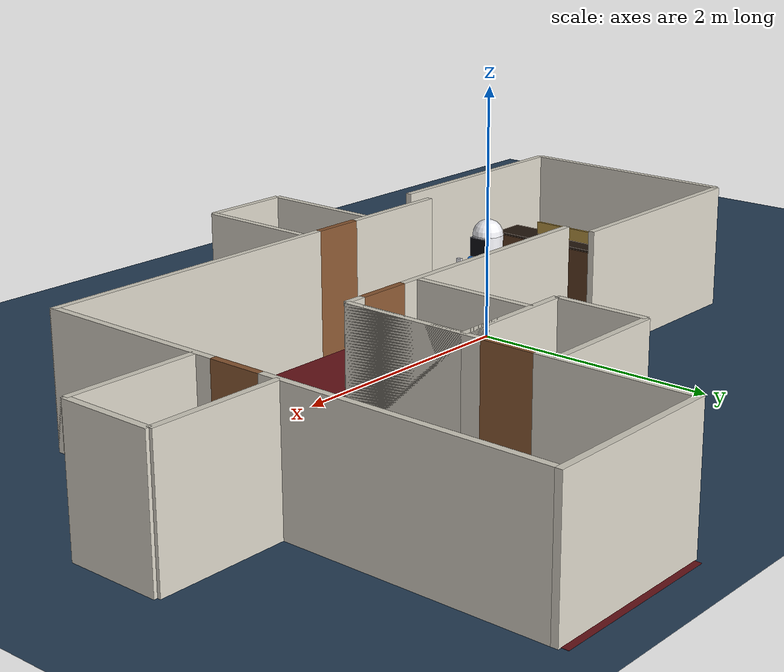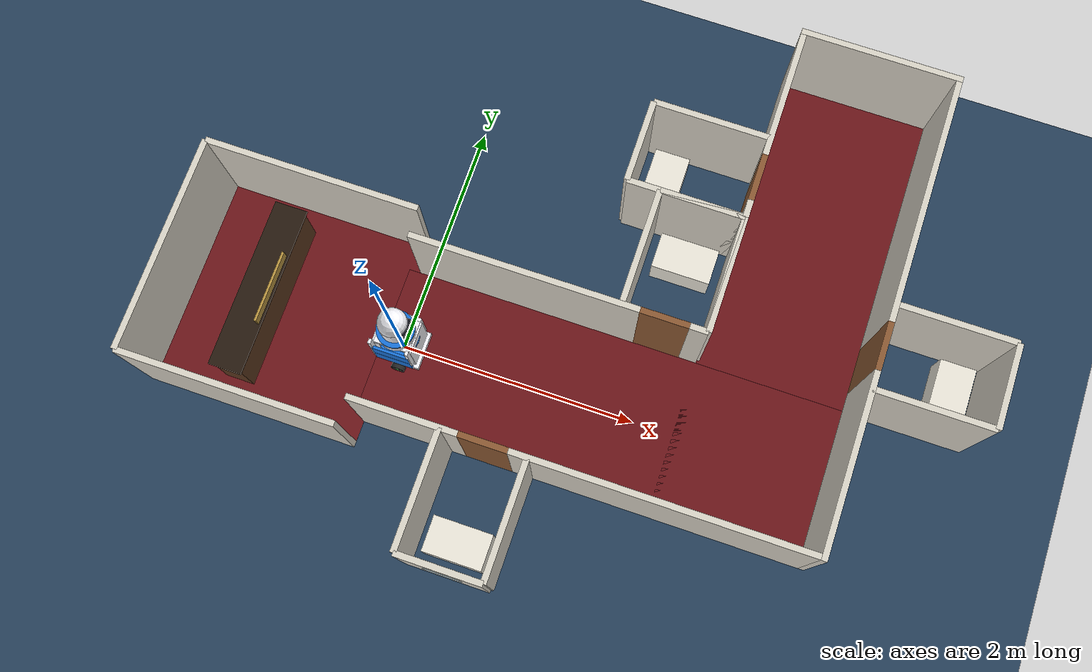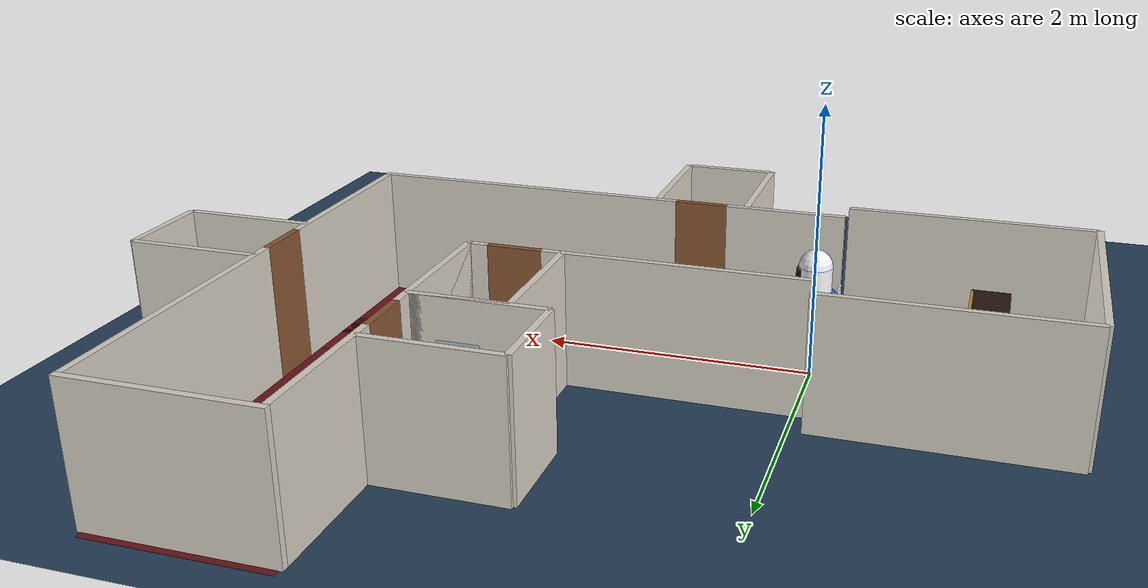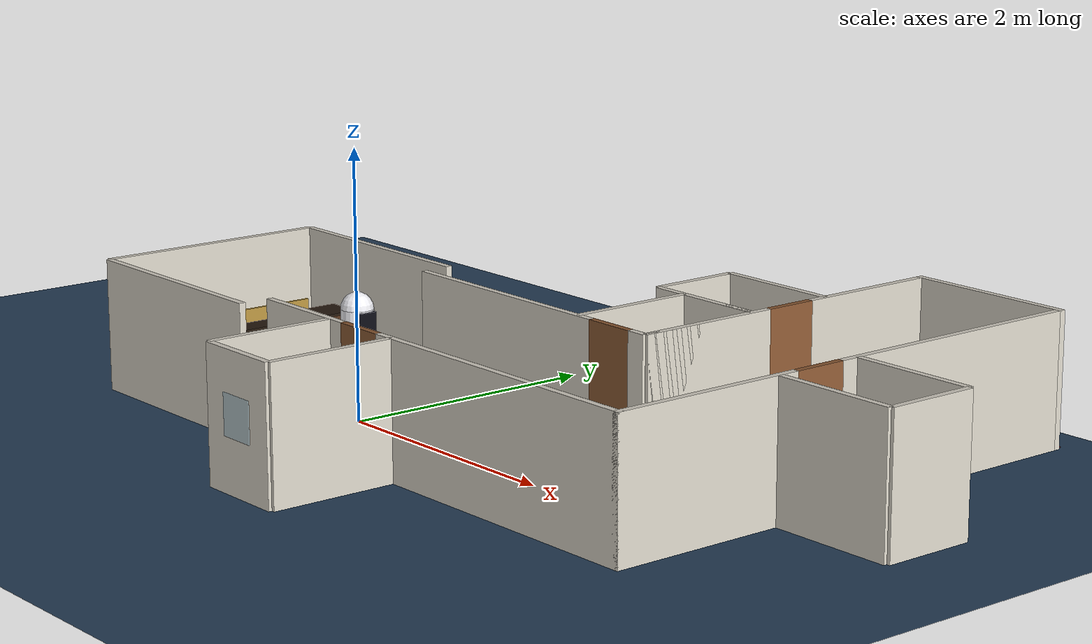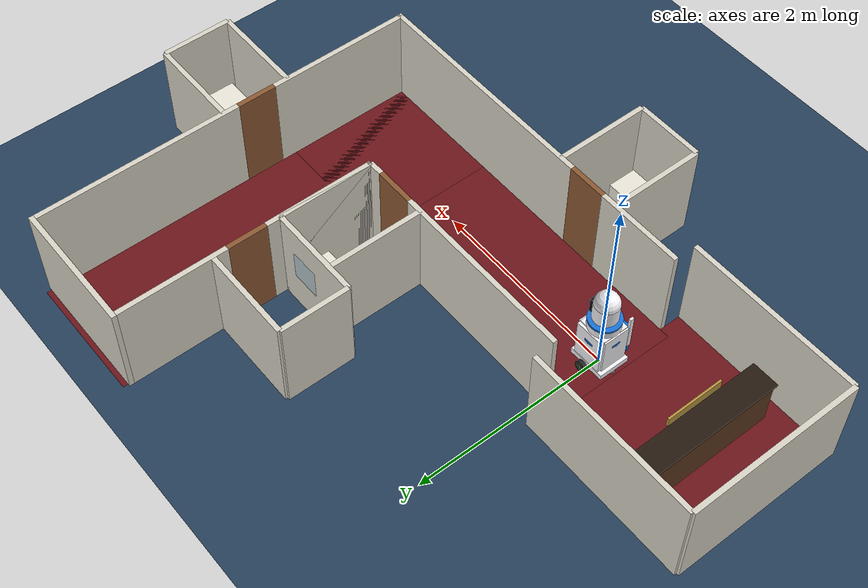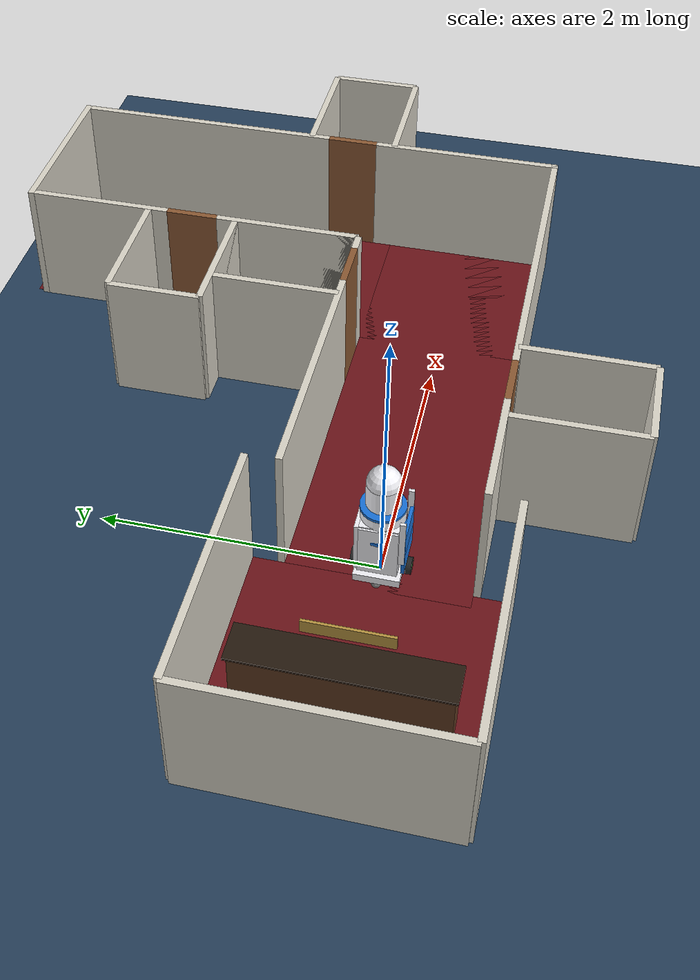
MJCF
<mujoco model="concierge_hotel_corridor">
  <include file="delivery_bot_v2.xml"/>

  <asset>
    <material name="wall_paint" rgba="0.85 0.83 0.78 1"/>
    <material name="door_panel" rgba="0.55 0.35 0.2 1"/>
    <material name="carpet_hotel" rgba="0.42 0.08 0.1 1"/>
    <material name="desk_wood" rgba="0.36 0.22 0.12 1"/>
    <material name="desk_top" rgba="0.15 0.1 0.06 1"/>
    <material name="bed_linen" rgba="0.92 0.9 0.85 1"/>
    <material name="window_glass" rgba="0.65 0.78 0.85 0.55"/>
    <material name="sign_brass" rgba="0.72 0.58 0.25 1"/>
  </asset>

  <worldbody>
    <camera name="top" mode="fixed" pos="1.5 1.5 9" xyaxes="1 0 0  0 1 0" fovy="30"/>

    <camera name="lobby_side_view" mode="targetbodycom" target="robot" pos="-1.65 -0.75 0.7"/>

    <camera name="guest_view" mode="targetbodycom" target="robot" pos="-0.35 0.85 0.55"/>

    <light name="lobby_light" pos="-1.5 0 0.95" dir="0 0 -1" diffuse="0.9 0.82 0.68" ambient="0.3 0.27 0.22" castshadow="false"/>
    <light name="hall_light_near" pos="1.5 0 0.95" dir="0 0 -1" diffuse="0.85 0.78 0.63" ambient="0.25 0.22 0.19" castshadow="false"/>
    <light name="hall_light_far" pos="3.0 1.8 0.95" dir="0 0 -1" diffuse="0.85 0.78 0.63" ambient="0.25 0.22 0.19" castshadow="false"/>

    <!-- Staff POV from behind the front desk (desk at x=-1.2, top at z~0.5),
         used by engine.py's loading scene: looks over the counter at the
         robot's cargo side while it is loaded. -->
    <camera name="desk_staff" mode="targetbodycom" target="robot" pos="-1.6 0.3 1.3" fovy="60"/>
    <camera name="room_0803" mode="targetbodycom" target="robot" pos="1.15 -1.5 0.9" fovy="60"/>
    <camera name="room_0804" mode="targetbodycom" target="robot" pos="2.15 1.5 0.9" fovy="60"/>
    <camera name="room_1204" mode="targetbodycom" target="robot" pos="4.45 1.15 0.9" fovy="60"/>
    <camera name="room_1205" mode="targetbodycom" target="robot" pos="1.55 2.15 0.9" fovy="60"/>
    <light name="room_light_0803" pos="1.0 -1.2 0.95" dir="0 0 -1" diffuse="0.8 0.74 0.6" castshadow="false"/>
    <light name="room_light_0804" pos="2.0 1.2 0.95" dir="0 0 -1" diffuse="0.8 0.74 0.6" castshadow="false"/>
    <light name="room_light_1204" pos="4.15 1.0 0.95" dir="0 0 -1" diffuse="0.8 0.74 0.6" castshadow="false"/>
    <light name="room_light_1205" pos="1.85 2.0 0.95" dir="0 0 -1" diffuse="0.8 0.74 0.6" castshadow="false"/>

    <geom name="carpet_lobby" type="box" pos="-1.0 0 0.001" size="0.9 0.9 0.001" material="carpet_hotel" contype="0" conaffinity="0"/>
    <geom name="carpet_near" type="box" pos="1.725 0 0.001" size="1.925 0.65 0.001" material="carpet_hotel" contype="0" conaffinity="0"/>
    <geom name="carpet_far" type="box" pos="3.0 1.375 0.001" size="0.65 2.025 0.001" material="carpet_hotel" contype="0" conaffinity="0"/>

    <body name="front_desk" pos="-1.2 0 0">
      <geom name="desk_body" type="box" pos="0 0 0.25" size="0.12 0.7 0.25" material="desk_wood" contype="0" conaffinity="0"/>
      <geom name="desk_top" type="box" pos="0 0 0.505" size="0.14 0.72 0.01" material="desk_top" contype="0" conaffinity="0"/>
      <geom name="desk_sign" type="box" pos="0.13 0 0.62" size="0.01 0.3 0.05" material="sign_brass" contype="0" conaffinity="0"/>
    </body>

    <geom name="lobby_back" type="box" pos="-1.9 0 0.5" size="0.025 0.9 0.5" material="wall_paint" contype="0" conaffinity="0"/>
    <geom name="lobby_side_s" type="box" pos="-1.0 -0.9 0.5" size="0.9 0.025 0.5" material="wall_paint" contype="0" conaffinity="0"/>
    <geom name="lobby_side_n" type="box" pos="-1.0 0.9 0.5" size="0.9 0.025 0.5" material="wall_paint" contype="0" conaffinity="0"/>

    <!-- ============ Near arm (desk -> junction), centerline y=0 ============ -->

    <!-- South wall (y=-0.65 inner face), broken by room 0803's door gap
         (x: 0.8 to 1.2) -->
    <geom name="wall_s_near_a" type="box" pos="0.35 -0.675 0.5" size="0.45 0.025 0.5" material="wall_paint"/>
    <!-- runs to the far arm's outer face (x=3.675) so the L's outer corner is
         closed by the walls themselves; see the note at the end of the file -->
    <geom name="wall_s_near_b" type="box" pos="2.4375 -0.675 0.5" size="1.2375 0.025 0.5" material="wall_paint"/>
    <!-- hinged so it can swing into the room on arrival (engine.py ARRIVED
         sequence); angle is set kinematically by concierge_sim, never
         collides (the robot stays in the corridor) -->
    <body name="door_0803" pos="0.8 -0.675 0">
      <joint name="door_hinge_0803" type="hinge" axis="0 0 -1" range="0 100" limited="true" damping="5"/>
      <geom name="0803" type="box" pos="0.2 0 0.5" size="0.2 0.025 0.5" material="door_panel" contype="0" conaffinity="0"/>
    </body>

    <geom name="room0803_back" type="box" pos="1.0 -1.65 0.5" size="0.35 0.025 0.5" material="wall_paint" contype="0" conaffinity="0"/>
    <geom name="room0803_left" type="box" pos="0.65 -1.1625 0.5" size="0.025 0.4875 0.5" material="wall_paint" contype="0" conaffinity="0"/>
    <geom name="room0803_right" type="box" pos="1.35 -1.1625 0.5" size="0.025 0.4875 0.5" material="wall_paint" contype="0" conaffinity="0"/>
    <geom name="room0803_bed" type="box" pos="1.0 -1.4 0.15" size="0.25 0.15 0.15" material="bed_linen" contype="0" conaffinity="0"/>
    <geom name="room0803_window" type="box" pos="1.0 -1.675 0.55" size="0.15 0.005 0.15" material="window_glass" contype="0" conaffinity="0"/>

    <!-- North wall (y=+0.65 inner face), stops before the junction (must
         leave room for the far arm's own widened corridor to pass
         through), broken by 0804's gap -->
    <geom name="wall_n_near_a" type="box" pos="0.85 0.675 0.5" size="0.95 0.025 0.5" material="wall_paint"/>
    <geom name="wall_n_near_b" type="box" pos="2.275 0.675 0.5" size="0.075 0.025 0.5" material="wall_paint"/>
    <!-- hinged so it can swing into the room on arrival (engine.py ARRIVED
         sequence); angle is set kinematically by concierge_sim, never
         collides (the robot stays in the corridor) -->
    <body name="door_0804" pos="1.8 0.675 0">
      <joint name="door_hinge_0804" type="hinge" axis="0 0 1" range="0 100" limited="true" damping="5"/>
      <geom name="0804" type="box" pos="0.2 0 0.5" size="0.2 0.025 0.5" material="door_panel" contype="0" conaffinity="0"/>
    </body>

    <!-- Room 0804 interior -->
    <geom name="room0804_back" type="box" pos="2.0 1.65 0.5" size="0.35 0.025 0.5" material="wall_paint" contype="0" conaffinity="0"/>
    <geom name="room0804_left" type="box" pos="1.65 1.1625 0.5" size="0.025 0.4875 0.5" material="wall_paint" contype="0" conaffinity="0"/>
    <geom name="room0804_right" type="box" pos="2.35 1.1625 0.5" size="0.025 0.4875 0.5" material="wall_paint" contype="0" conaffinity="0"/>
    <geom name="room0804_bed" type="box" pos="2.0 1.4 0.15" size="0.25 0.15 0.15" material="bed_linen" contype="0" conaffinity="0"/>
    <geom name="room0804_window" type="box" pos="2.0 1.675 0.55" size="0.15 0.005 0.15" material="window_glass" contype="0" conaffinity="0"/>

    <!-- ============ Far arm (junction -> dead end), centerline x=3.0 ============ -->

    <!-- East wall (x=+3.65 inner face), broken by room 1204's door gap -->
    <geom name="wall_e_far_a" type="box" pos="3.65 0.05 0.5" size="0.025 0.75 0.5" material="wall_paint"/>
    <geom name="wall_e_far_b" type="box" pos="3.65 2.25 0.5" size="0.025 1.05 0.5" material="wall_paint"/>
    <!-- hinged so it can swing into the room on arrival (engine.py ARRIVED
         sequence); angle is set kinematically by concierge_sim, never
         collides (the robot stays in the corridor) -->
    <body name="door_1204" pos="3.65 0.8 0">
      <joint name="door_hinge_1204" type="hinge" axis="0 0 -1" range="0 100" limited="true" damping="5"/>
      <geom name="1204" type="box" pos="0 0.2 0.5" size="0.025 0.2 0.5" material="door_panel" contype="0" conaffinity="0"/>
    </body>

    <!-- Room 1204 interior -->
    <geom name="room1204_back" type="box" pos="4.625 1.0 0.5" size="0.025 0.35 0.5" material="wall_paint" contype="0" conaffinity="0"/>
    <geom name="room1204_near" type="box" pos="4.1375 0.65 0.5" size="0.4875 0.025 0.5" material="wall_paint" contype="0" conaffinity="0"/>
    <geom name="room1204_far" type="box" pos="4.1375 1.35 0.5" size="0.4875 0.025 0.5" material="wall_paint" contype="0" conaffinity="0"/>
    <geom name="room1204_bed" type="box" pos="4.375 1.0 0.15" size="0.15 0.25 0.15" material="bed_linen" contype="0" conaffinity="0"/>
    <geom name="room1204_window" type="box" pos="4.625 1.0 0.55" size="0.005 0.15 0.15" material="window_glass" contype="0" conaffinity="0"/>

    <!-- West wall (x=+2.35 inner face), starts at y=0.65 (must leave room
         for the near arm's own widened corridor to pass through the
         junction), broken by 1205's gap -->
    <geom name="wall_w_far_a" type="box" pos="2.35 1.2375 0.5" size="0.025 0.5625 0.5" material="wall_paint"/>
    <geom name="wall_w_far_b" type="box" pos="2.35 2.75 0.5" size="0.025 0.55 0.5" material="wall_paint"/>
    <!-- hinged so it can swing into the room on arrival (engine.py ARRIVED
         sequence); angle is set kinematically by concierge_sim, never
         collides (the robot stays in the corridor) -->
    <body name="door_1205" pos="2.35 1.8 0">
      <joint name="door_hinge_1205" type="hinge" axis="0 0 1" range="0 100" limited="true" damping="5"/>
      <geom name="1205" type="box" pos="0 0.2 0.5" size="0.025 0.2 0.5" material="door_panel" contype="0" conaffinity="0"/>
    </body>

    <!-- Room 1205 interior -->
    <geom name="room1205_back" type="box" pos="1.375 2.0 0.5" size="0.025 0.35 0.5" material="wall_paint" contype="0" conaffinity="0"/>
    <geom name="room1205_near" type="box" pos="1.8625 1.65 0.5" size="0.4875 0.025 0.5" material="wall_paint" contype="0" conaffinity="0"/>
    <geom name="room1205_far" type="box" pos="1.8625 2.35 0.5" size="0.4875 0.025 0.5" material="wall_paint" contype="0" conaffinity="0"/>
    <geom name="room1205_bed" type="box" pos="1.625 2.0 0.15" size="0.15 0.25 0.15" material="bed_linen" contype="0" conaffinity="0"/>
    <geom name="room1205_window" type="box" pos="1.375 2.0 0.55" size="0.005 0.15 0.15" material="window_glass" contype="0" conaffinity="0"/>

    <!-- Dead-end cap past room 1205, widened to match the new corridor
         cross-section -->
    <geom name="wall_end_far" type="box" pos="3.0 3.325 0.5" size="0.675 0.025 0.5" material="wall_paint"/>

  </worldbody>
</mujoco>

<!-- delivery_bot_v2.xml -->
<mujoco model="concierge_delivery_bot_v2">
  <compiler autolimits="true"/>

  <asset>
    <texture name="grid" type="2d" builtin="checker" width="512" height="512"
              rgb1=".1 .2 .3" rgb2=".2 .3 .4"/>
    <material name="grid" texture="grid" texrepeat="1 1" texuniform="true" reflectance=".2"/>
    <material name="shell_white" rgba="0.95 0.95 0.97 1"/>
    <material name="shell_accent" rgba="0.1 0.45 0.85 1"/>
    <material name="screen_dark" rgba="0.05 0.05 0.08 1"/>
  </asset>

  <default>
    <joint damping="1.5" actuatorfrcrange="-15 15"/>
    <default class="wheel">
      <geom type="cylinder" size="0.06 0.02" rgba="0.15 0.15 0.15 1"/>
    </default>
    <default class="decor">
      <site type="box" rgba="0.5 1 0.5 1"/>
    </default>
    <default class="shell">
      <geom contype="0" conaffinity="0" group="2"/>
    </default>
  </default>

  <worldbody>
    <geom type="plane" size="5.5 3.7 .01" material="grid"/>

    <body name="robot" pos="0 0 0.09">
      <freejoint/>
      <light name="top light" pos="0 0 2.5" mode="trackcom" diffuse=".7 .7 .7" ambient=".3 .3 .3"/>
      <light name="fill light" pos="1.5 -1 1.2" dir="-1 1 -0.5" diffuse=".5 .5 .5"/>

      <geom name="rear_support" pos="-0.16 0 -0.055" type="sphere" size="0.035"
            condim="1" priority="1"/>

      <geom name="chassis" type="box" pos="0 0 0" size="0.19 0.16 0.03" class="shell" material="shell_white"/>
      <geom name="chassis_collision" type="box" pos="0 0 0" size="0.19 0.16 0.03" rgba="0 0 0 0" group="3"/>

      <body name="left_wheel" pos="0.02 0.19 -0.03" zaxis="0 1 0">
        <joint name="left"/>
        <geom class="wheel"/>
        <site class="decor" size="0.006 0.05 0.02"/>
        <site class="decor" size="0.05 0.006 0.02"/>
      </body>
      <body name="right_wheel" pos="0.02 -0.19 -0.03" zaxis="0 1 0">
        <joint name="right"/>
        <geom class="wheel"/>
        <site class="decor" size="0.006 0.05 0.02"/>
        <site class="decor" size="0.05 0.006 0.02"/>
      </body>

      <body name="tower" pos="0 0 0.03">
        <inertial pos="0 0 0.35" mass="14" diaginertia="0.7 0.7 0.18"/>

        <geom name="wall_back"  type="box" pos="0 0.135 0.22" size="0.15 0.03 0.20" material="shell_white" class="shell"/>
        <geom name="wall_left"  type="box" pos="0.135 0 0.22" size="0.03 0.135 0.20" material="shell_white" class="shell"/>
        <geom name="wall_right" type="box" pos="-0.135 0 0.22" size="0.03 0.135 0.20" material="shell_white" class="shell"/>
        <geom name="wall_floor" type="box" pos="0 0 0.03" size="0.15 0.135 0.02" material="shell_white" class="shell"/>
        <geom name="wall_ceiling" type="box" pos="0 0 0.41" size="0.15 0.135 0.02" material="shell_white" class="shell"/>
        <!-- -y side is deliberately open: that's the compartment mouth
             the lid below covers when closed -->

        <geom name="tower_lower_skin" type="cylinder" pos="0 0.02 0.22" size="0.19 0.20"
              material="shell_white" class="shell" rgba="0.95 0.95 0.97 0.0"/>

        <geom name="accent_ring_low" type="cylinder" pos="0 0 0.30" size="0.172 0.012"
              material="shell_accent" class="shell"/>

        <!-- Mid section: same radius as lower, no visible seam/step -->
        <geom name="tower_mid" type="cylinder" pos="0 0 0.46" size="0.155 0.05"
              material="shell_white" class="shell"/>
        <geom name="accent_ring_mid" type="cylinder" pos="0 0 0.51" size="0.157 0.01"
              material="shell_accent" class="shell"/>

        <!-- Upper head unit: narrower cylinder capped with a dome, so the
             screen sits ON the head unit itself rather than floating on a
             separate box below it -->
        <geom name="tower_upper" type="cylinder" pos="0 0 0.63" size="0.12 0.09"
              material="shell_white" class="shell"/>
        <geom name="tower_head" type="sphere" pos="0 0 0.72" size="0.12"
              material="shell_white" class="shell"/>

        <!-- Face/screen: curved band on the head unit, angled slightly
             upward the way Pudu/Keenon screens are, sized to read as a
             face rather than a panel -->
        <geom name="screen" type="box" pos="0.108 0 0.635" size="0.02 0.075 0.075"
              material="screen_dark" class="shell"/>

        <geom name="tower_collision" type="cylinder" pos="0 0 0.45" size="0.17 0.42"
              rgba="0 0 0 0" group="3"/>

        <geom name="payload_demo" type="box" pos="0 0.02 0.27" size="0.12 0.09 0.09"
              rgba="0.85 0.25 0.15 1" class="shell"/>

        <!-- Guide rails: fixed to the tower, flank the opening on both
             sides, extend upward the full travel distance so the door
             has somewhere to slide into -->
        <geom name="rail_left" type="box" pos="0.155 -0.16 0.34" size="0.012 0.02 0.19"
              material="shell_white" class="shell"/>
        <geom name="rail_right" type="box" pos="-0.155 -0.16 0.34" size="0.012 0.02 0.19"
              material="shell_white" class="shell"/>

        <body name="lid_top" pos="0 -0.17 0.305">
          <joint name="lid_top_slide" type="slide" axis="0 0 1" pos="0 0 0"
                 range="0 0.16" damping="8" actuatorfrcrange="-40 40"/>
          <inertial pos="0 0 0" mass="0.25" diaginertia="0.003 0.003 0.001"/>
          <geom name="lid_top_geom" type="box" pos="0 0 0" size="0.155 0.012 0.085"
                material="shell_accent" class="shell"/>
          <geom name="lid_top_collision" type="box" pos="0 0 0" size="0.155 0.012 0.085"
                rgba="0 0 0 0" group="3"/>
        </body>

        <body name="lid_bottom" pos="0 -0.17 0.135">
          <joint name="lid_bottom_slide" type="slide" axis="0 0 -1" pos="0 0 0"
                 range="0 0.04" damping="8" actuatorfrcrange="-40 40"/>
          <inertial pos="0 0 0" mass="0.25" diaginertia="0.003 0.003 0.001"/>
          <geom name="lid_bottom_geom" type="box" pos="0 0 0" size="0.155 0.012 0.085"
                material="shell_accent" class="shell"/>
          <geom name="lid_bottom_collision" type="box" pos="0 0 0" size="0.155 0.012 0.085"
                rgba="0 0 0 0" group="3"/>
        </body>

        <site name="payload_site" pos="0 0 0.30" size="0.02" rgba="1 0 0 0.3"/>
      </body>

      <site name="base_imu" pos="0 0 0" size="0.01"/>

      <camera name="chase" mode="fixed" pos="-0.8 0.15 0.55" xyaxes="-0.5 -0.87 0  0.3 -0.17 0.94"/>
      <camera name="lid" mode="fixed" pos="0 -0.27 0.22" xyaxes="1 0 0  0 0.3 0.95" fovy="100"/>
    </body>
  </worldbody>

  <tendon>
    <fixed name="forward">
      <joint joint="left" coef=".5"/>
      <joint joint="right" coef=".5"/>
    </fixed>
    <fixed name="turn">
      <joint joint="left" coef="-.5"/>
      <joint joint="right" coef=".5"/>
    </fixed>
  </tendon>

  <actuator>
    <motor name="forward" tendon="forward" ctrlrange="-8 8"/>
    <motor name="turn" tendon="turn" ctrlrange="-8 8"/>
    <position name="lid_top_pos" joint="lid_top_slide" kp="200" kv="20" ctrlrange="0 0.16"/>
    <position name="lid_bottom_pos" joint="lid_bottom_slide" kp="3000" kv="80" ctrlrange="0 0.04"/>
  </actuator>

  <sensor>
    <jointactuatorfrc name="right" joint="right"/>
    <jointactuatorfrc name="left" joint="left"/>
    <gyro name="base_gyro" site="base_imu"/>
    <accelerometer name="base_accel" site="base_imu"/>
    <jointpos name="lid_top_position" joint="lid_top_slide"/>
    <jointpos name="lid_bottom_position" joint="lid_bottom_slide"/>
  </sensor>

  <keyframe>
    <key name="home" qpos="0 0 0.09 1 0 0 0 0 0 0 0"/>
  </keyframe>
</mujoco>
